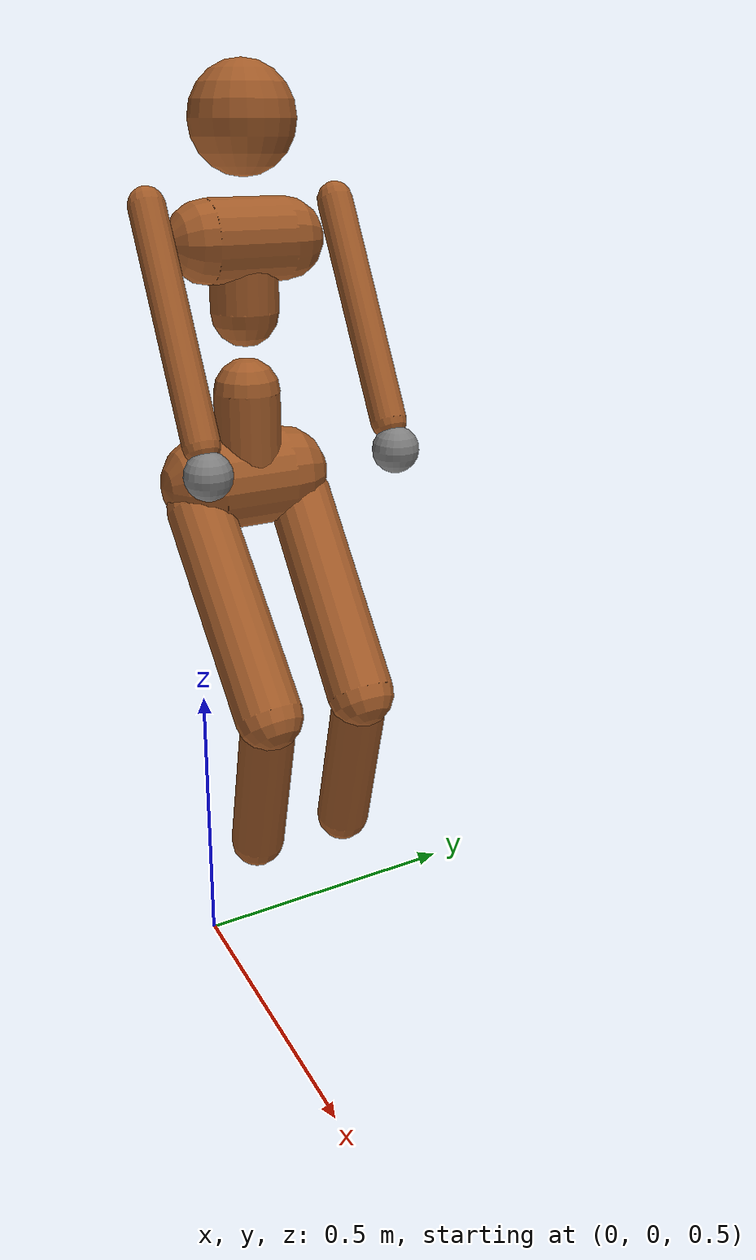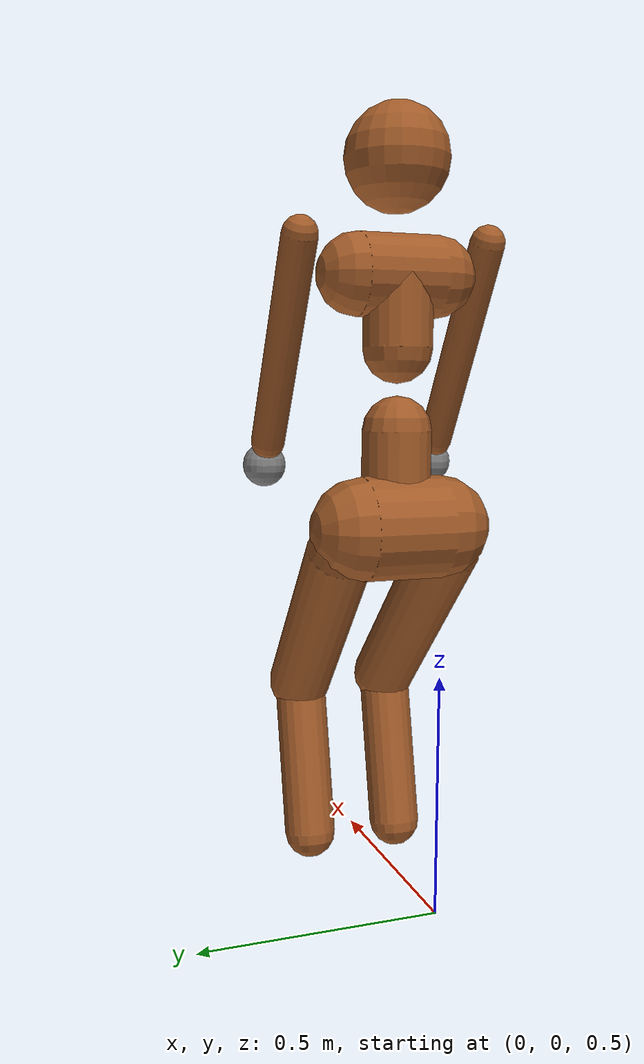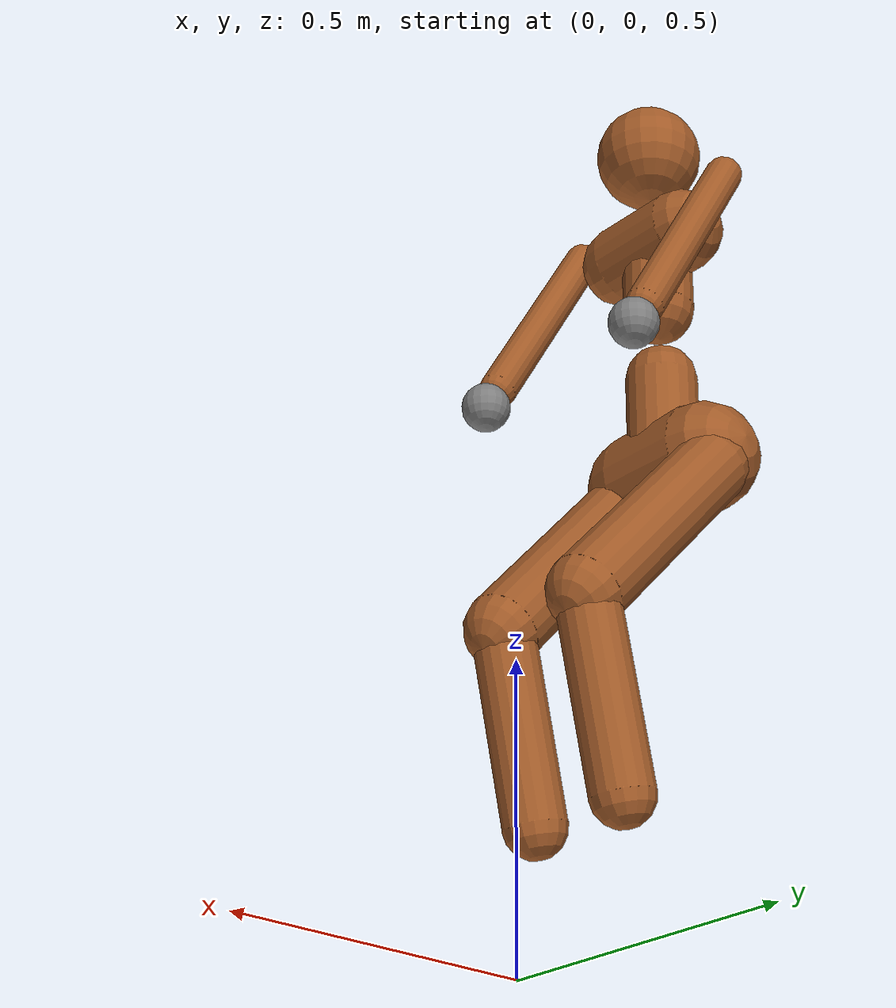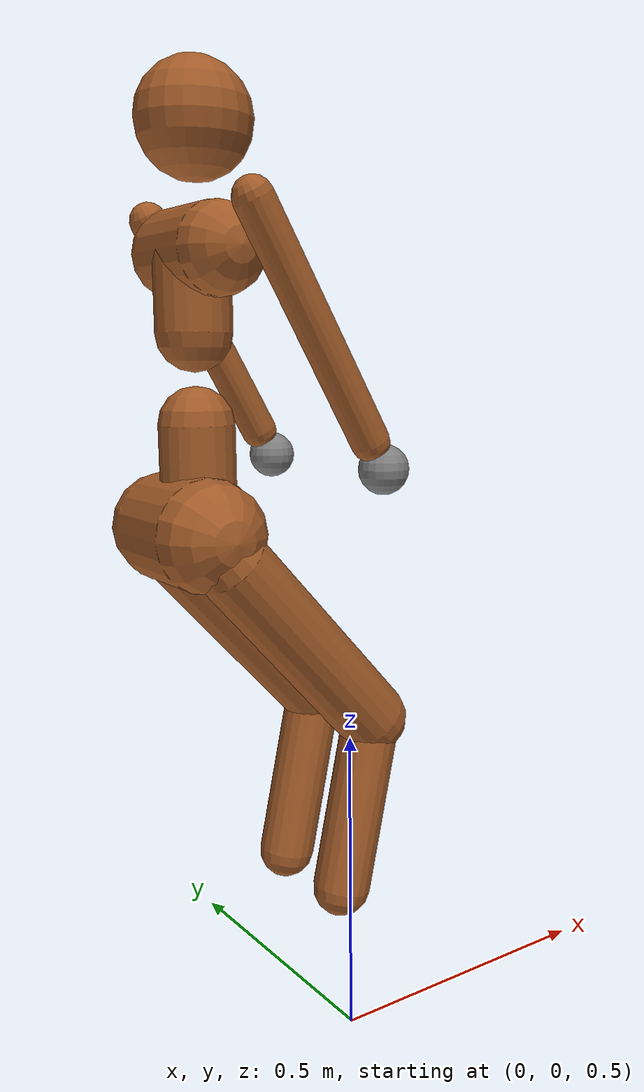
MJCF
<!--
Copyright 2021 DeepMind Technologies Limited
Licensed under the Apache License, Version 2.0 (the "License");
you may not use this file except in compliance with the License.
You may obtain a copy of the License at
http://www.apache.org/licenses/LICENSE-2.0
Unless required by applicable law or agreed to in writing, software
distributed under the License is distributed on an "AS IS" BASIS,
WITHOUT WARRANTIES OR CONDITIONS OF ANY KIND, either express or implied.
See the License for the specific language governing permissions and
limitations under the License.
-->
<mujoco model="Humanoid">

    <compiler inertiafromgeom="true" angle="degree"/>

    <default>
        <joint limited="true" damping="1" armature="0"/>
        <geom condim="1" material="matgeom"/>
        <motor ctrlrange="-.4 .4" ctrllimited="true"/>
    </default>

    <visual>
        <map force="0.1" zfar="30"/>
        <rgba haze="0.15 0.25 0.35 1"/>
        <quality shadowsize="2048"/>
        <global offwidth="800" offheight="800"/>
    </visual>

    <asset>

        <texture name="texgeom" type="cube" builtin="flat" mark="cross" width="127" height="1278"
            rgb1="0.8 0.6 0.4" rgb2="0.8 0.6 0.4" markrgb="1 1 1" random="0.01"/>

        <material name="matgeom" texture="texgeom" texuniform="true" rgba="0.8 0.6 .4 1"/>
    </asset>

    <worldbody>

        <body name="torso" pos="-0.16 0.17 1.756">
            <freejoint name="root"/>
            <geom name="torso1" type="capsule" fromto="0 -.07 0 0 .07 0"  size="0.07"/>
            <geom name="head" type="sphere" pos="0 0 .19" size=".09"/>
            <geom name="uwaist" type="capsule" fromto="-.01 0 0 -.01 0 -0.12" size="0.06"/>
            <body name="lwaist" pos="-.01 0 -0.260" quat="1.000 0 -0.002 0" >
                <geom name="lwaist" type="capsule" fromto="0 0 0 0 0 -0.165"  size="0.06" />
                <joint name="abdomen_z" type="hinge" pos="0 0 0.065" axis="0 0 1" range="-45 45" damping="5" stiffness="20" armature="0.02" />
                <joint name="abdomen_y" type="hinge" pos="0 0 0.065" axis="0 1 0" range="-75 30" damping="5" stiffness="10" armature="0.02" />
                <body name="pelvis" pos="0 0 -0.165" quat="1.000 0 -0.002 0" >
                    <joint name="abdomen_x" type="hinge" pos="0 0 0.1" axis="1 0 0" range="-35 35" damping="5" stiffness="10" armature="0.02" />
                    <geom name="butt" type="capsule" fromto="-.02 -.07 0 -.02 .07 0"  size="0.09" />
                    <body name="right_thigh" pos="0 -0.1 -0.04" >
                        <joint name="right_hip_x" type="hinge" pos="0 0 0" axis="1 0 0" range="-25 5"   damping="5" stiffness="10" armature="0.01" />
                        <joint name="right_hip_z" type="hinge" pos="0 0 0" axis="0 0 1" range="-60 35"  damping="5" stiffness="10" armature="0.01" />
                        <joint name="right_hip_y" type="hinge" pos="0 0 0" axis="0 1 0" range="-120 20" damping="5" stiffness="20" armature="0.01" />
                        <geom name="right_thigh1" type="capsule" fromto="0 0 0 0.266 0.01 -.299"  size="0.06" />
                        <body name="right_shin" pos="0.266 0.01 -0.299" >
                            <joint name="right_knee" type="hinge" pos="0 0 .02" axis="0 -1 0" range="-160 -2" stiffness="1" armature="0.0060" />
                            <geom name="right_shin1" type="capsule" fromto="0 0 0 -0.066 0 -.293"   size="0.049" />
                            <site name="right_foot" pos="-0.066 0 -.293"/>
                        </body>
                    </body>
                    <body name="left_thigh" pos="0 0.1 -0.04" >
                        <joint name="left_hip_x" type="hinge" pos="0 0 0" axis="-1 0 0" range="-25 5"  damping="5" stiffness="10" armature="0.01" />
                        <joint name="left_hip_z" type="hinge" pos="0 0 0" axis="0 0 -1" range="-60 35" damping="5" stiffness="10" armature="0.01" />
                        <joint name="left_hip_y" type="hinge" pos="0 0 0" axis="0 1 0" range="-120 20" damping="5" stiffness="20" armature="0.01" />
                        <geom name="left_thigh1" type="capsule" fromto="0 0 0 0.266 -0.01 -.299"  size="0.06" />
                        <body name="left_shin" pos="0.266 -0.01 -0.299" >
                            <joint name="left_knee" type="hinge" pos="0 0 .02" axis="0 -1 0" range="-160 -2" stiffness="1" armature="0.0060" />
                            <geom name="left_shin1" type="capsule" fromto="0 0 0 -0.066 0 -.293"   size="0.049" />
                            <site name="left_foot" pos="-0.066 0 -.293"/>
                        </body>
                    </body>
                </body>
            </body>
            <body name="right_upper_arm" pos="0 -0.17 0.06" >
                <joint name="right_shoulder" type="hinge" pos="0 0 0" axis="0 -1 0"  range="-85 60" stiffness="1" armature="0.0068" />
                <geom name="right_arm" type="capsule" fromto="0 0 0 0.2 0 -0.346" size="0.031 0.16"/>
                <body name="right_wrist" pos="0.225 0 -0.389">
                    <site name="right_hand" type="sphere" pos="0 0 0" size="0.04"/>
                </body>
            </body>
            <body name="left_upper_arm" pos="0 0.17 0.06" >
                <joint name="left_shoulder" type="hinge" pos="0 0 0" axis="0 1 0" range="-60 85" stiffness="1" armature="0.0068" />
                <geom name="left_arm" type="capsule" fromto="0 0 0 .2 0 -0.346" size="0.031 0.16"/>
                <body name="left_wrist" pos="0.225 0 -0.389">
                    <site name="left_hand" type="sphere" pos="0 0 0" size="0.04"/>
                </body>
            </body>
        </body>
    </worldbody>

    <actuator>
        <motor name="abdomen_y"       gear="200" joint="abdomen_y" />
        <motor name="abdomen_z"       gear="200" joint="abdomen_z" />
        <motor name="abdomen_x"       gear="200" joint="abdomen_x" />
        <motor name="right_knee"      gear="400" joint="right_knee" />
        <motor name="left_knee"       gear="400" joint="left_knee" />
        <motor name="right_shoulder" gear="100" joint="right_shoulder" />
        <motor name="left_shoulder"  gear="100" joint="left_shoulder" />
    </actuator>

</mujoco>
